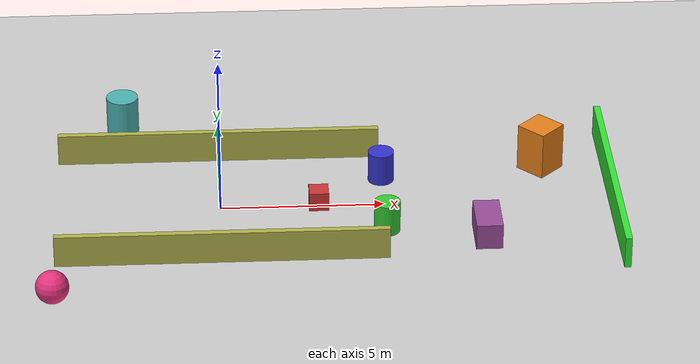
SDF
<?xml version="1.0"?>
<sdf version="1.8">
  <world name="circuito_obstaculos">

    <!-- Physics settings -->
    <physics name="1ms" type="ignored">
      <max_step_size>0.001</max_step_size>
      <real_time_factor>1.0</real_time_factor>
    </physics>

    <!-- Essential Gazebo plugins -->
    <plugin filename="libignition-gazebo-physics-system.so"
            name="ignition::gazebo::systems::Physics"/>
    <plugin filename="libignition-gazebo-user-commands-system.so"
            name="ignition::gazebo::systems::UserCommands"/>
    <plugin filename="libignition-gazebo-scene-broadcaster-system.so"
            name="ignition::gazebo::systems::SceneBroadcaster"/>
    <plugin filename="libignition-gazebo-sensors-system.so"
            name="ignition::gazebo::systems::Sensors">
      <render_engine>ogre2</render_engine>
    </plugin>

    <!-- World properties -->
    <gravity>0 0 -9.8</gravity>
    <magnetic_field>5.565e-06 2.289e-05 -4.239e-05</magnetic_field>
    <atmosphere type="adiabatic"/>

    <!-- Scene settings -->
    <scene>
      <ambient>0.4 0.4 0.4 1</ambient>
      <background>0.7 0.7 0.7 1</background>
      <shadows>true</shadows>
      <grid>true</grid>
    </scene>

    <!-- Ground plane -->
    <model name="ground_plane">
      <static>true</static>
      <link name="ground">
        <collision name="collision">
          <geometry>
            <plane>
              <normal>0 0 1</normal>
              <size>50 50</size>
            </plane>
          </geometry>
          <surface>
            <friction>
              <ode>
                <mu>100</mu>
                <mu2>50</mu2>
              </ode>
            </friction>
          </surface>
        </collision>

        <visual name="visual">
          <geometry>
            <plane>
              <normal>0 0 1</normal>
              <size>50 50</size>
            </plane>
          </geometry>
          <material>
            <ambient>0.8 0.8 0.8 1</ambient>
            <diffuse>0.8 0.8 0.8 1</diffuse>
            <specular>0.8 0.8 0.8 1</specular>
          </material>
        </visual>
      </link>
    </model>

    <!-- Sun (directional light) -->
    <light type="directional" name="sun">
      <cast_shadows>true</cast_shadows>
      <pose>0 0 10 0 0 0</pose>
      <diffuse>0.8 0.8 0.8 1</diffuse>
      <specular>0.2 0.2 0.2 1</specular>
      <attenuation>
        <range>1000</range>
        <constant>0.9</constant>
        <linear>0.01</linear>
        <quadratic>0.001</quadratic>
      </attenuation>
      <direction>-0.5 0.1 -0.9</direction>
    </light>

    <!-- CIRCUITO DE OBSTÁCULOS PARA LA TAREA -->

    <!-- Pasillo inicial con obstáculos -->

    <!-- Pared izquierda del pasillo -->
    <model name="wall_left">
      <static>true</static>
      <pose>0 -3 0.5 0 0 0</pose>
      <link name="link">
        <collision name="collision">
          <geometry>
            <box><size>10 0.2 1</size></box>
          </geometry>
        </collision>
        <visual name="visual">
          <geometry>
            <box><size>10 0.2 1</size></box>
          </geometry>
          <material>
            <ambient>0.7 0.7 0.3 1</ambient>
            <diffuse>0.7 0.7 0.3 1</diffuse>
          </material>
        </visual>
      </link>
    </model>

    <!-- Pared derecha del pasillo -->
    <model name="wall_right">
      <static>true</static>
      <pose>0 3 0.5 0 0 0</pose>
      <link name="link">
        <collision name="collision">
          <geometry>
            <box><size>10 0.2 1</size></box>
          </geometry>
        </collision>
        <visual name="visual">
          <geometry>
            <box><size>10 0.2 1</size></box>
          </geometry>
          <material>
            <ambient>0.7 0.7 0.3 1</ambient>
            <diffuse>0.7 0.7 0.3 1</diffuse>
          </material>
        </visual>
      </link>
    </model>

    <!-- Obstáculo 1: Caja en el centro del pasillo -->
    <model name="obstacle_box_1">
      <static>true</static>
      <pose>3 0 0.3 0 0 0</pose>
      <link name="link">
        <collision name="collision">
          <geometry>
            <box><size>0.6 0.6 0.6</size></box>
          </geometry>
        </collision>
        <visual name="visual">
          <geometry>
            <box><size>0.6 0.6 0.6</size></box>
          </geometry>
          <material>
            <ambient>0.8 0.2 0.2 1</ambient>
            <diffuse>0.8 0.2 0.2 1</diffuse>
          </material>
        </visual>
      </link>
    </model>

    <!-- Obstáculo 2: Cilindro a la izquierda -->
    <model name="obstacle_cylinder_1">
      <static>true</static>
      <pose>5 -1.5 0.5 0 0 0</pose>
      <link name="link">
        <collision name="collision">
          <geometry>
            <cylinder>
              <radius>0.4</radius>
              <length>1.0</length>
            </cylinder>
          </geometry>
        </collision>
        <visual name="visual">
          <geometry>
            <cylinder>
              <radius>0.4</radius>
              <length>1.0</length>
            </cylinder>
          </geometry>
          <material>
            <ambient>0.2 0.8 0.2 1</ambient>
            <diffuse>0.2 0.8 0.2 1</diffuse>
          </material>
        </visual>
      </link>
    </model>

    <!-- Obstáculo 3: Cilindro a la derecha -->
    <model name="obstacle_cylinder_2">
      <static>true</static>
      <pose>5 1.5 0.5 0 0 0</pose>
      <link name="link">
        <collision name="collision">
          <geometry>
            <cylinder>
              <radius>0.4</radius>
              <length>1.0</length>
            </cylinder>
          </geometry>
        </collision>
        <visual name="visual">
          <geometry>
            <cylinder>
              <radius>0.4</radius>
              <length>1.0</length>
            </cylinder>
          </geometry>
          <material>
            <ambient>0.2 0.2 0.8 1</ambient>
            <diffuse>0.2 0.2 0.8 1</diffuse>
          </material>
        </visual>
      </link>
    </model>

    <!-- Obstáculo 4: Caja estrecha creando paso -->
    <model name="obstacle_box_2">
      <static>true</static>
      <pose>8 -2 0.4 0 0 0</pose>
      <link name="link">
        <collision name="collision">
          <geometry>
            <box><size>0.8 1.5 0.8</size></box>
          </geometry>
        </collision>
        <visual name="visual">
          <geometry>
            <box><size>0.8 1.5 0.8</size></box>
          </geometry>
          <material>
            <ambient>0.6 0.3 0.6 1</ambient>
            <diffuse>0.6 0.3 0.6 1</diffuse>
          </material>
        </visual>
      </link>
    </model>

    <!-- Obstáculo 5: Caja alta en esquina -->
    <model name="obstacle_box_3">
      <static>true</static>
      <pose>10 2 0.75 0 0 0.785</pose>
      <link name="link">
        <collision name="collision">
          <geometry>
            <box><size>1.0 1.0 1.5</size></box>
          </geometry>
        </collision>
        <visual name="visual">
          <geometry>
            <box><size>1.0 1.0 1.5</size></box>
          </geometry>
          <material>
            <ambient>0.9 0.5 0.1 1</ambient>
            <diffuse>0.9 0.5 0.1 1</diffuse>
          </material>
        </visual>
      </link>
    </model>

    <!-- Área abierta con obstáculos dispersos -->

    <!-- Obstáculo 6: Cilindro en área abierta -->
    <model name="obstacle_cylinder_3">
      <static>true</static>
      <pose>-3 5 0.6 0 0 0</pose>
      <link name="link">
        <collision name="collision">
          <geometry>
            <cylinder>
              <radius>0.5</radius>
              <length>1.2</length>
            </cylinder>
          </geometry>
        </collision>
        <visual name="visual">
          <geometry>
            <cylinder>
              <radius>0.5</radius>
              <length>1.2</length>
            </cylinder>
          </geometry>
          <material>
            <ambient>0.3 0.7 0.7 1</ambient>
            <diffuse>0.3 0.7 0.7 1</diffuse>
          </material>
        </visual>
      </link>
    </model>

    <!-- Obstáculo 7: Esfera -->
    <model name="obstacle_sphere_1">
      <static>true</static>
      <pose>-5 -5 0.5 0 0 0</pose>
      <link name="link">
        <collision name="collision">
          <geometry>
            <sphere><radius>0.5</radius></sphere>
          </geometry>
        </collision>
        <visual name="visual">
          <geometry>
            <sphere><radius>0.5</radius></sphere>
          </geometry>
          <material>
            <ambient>0.9 0.2 0.5 1</ambient>
            <diffuse>0.9 0.2 0.5 1</diffuse>
          </material>
        </visual>
      </link>
    </model>

    <!-- Pared final como meta -->
    <model name="goal_wall">
      <static>true</static>
      <pose>12 0 0.5 0 0 0</pose>
      <link name="link">
        <collision name="collision">
          <geometry>
            <box><size>0.2 8 1</size></box>
          </geometry>
        </collision>
        <visual name="visual">
          <geometry>
            <box><size>0.2 8 1</size></box>
          </geometry>
          <material>
            <ambient>0.2 0.9 0.2 1</ambient>
            <diffuse>0.2 0.9 0.2 1</diffuse>
          </material>
        </visual>
      </link>
    </model>

  </world>
</sdf>
